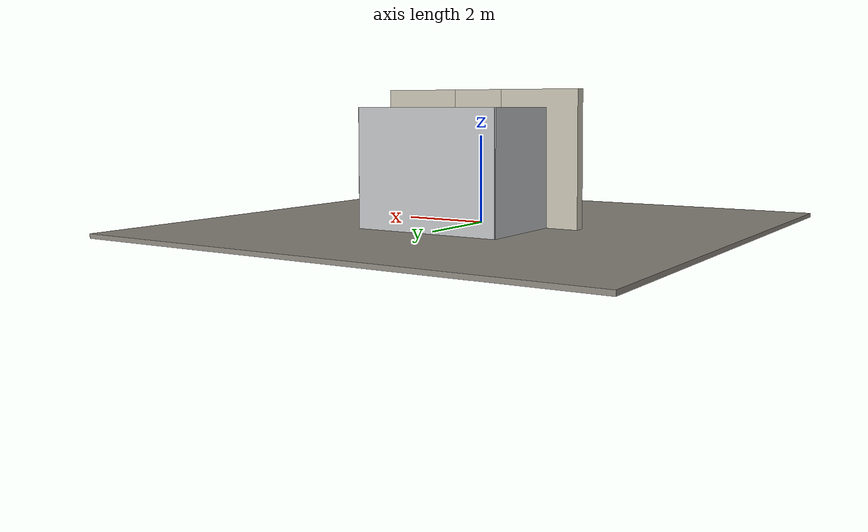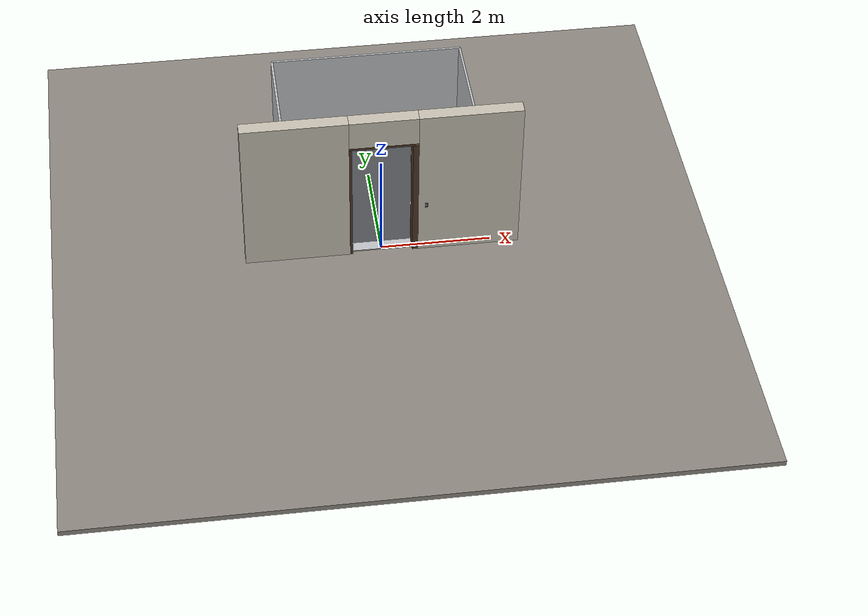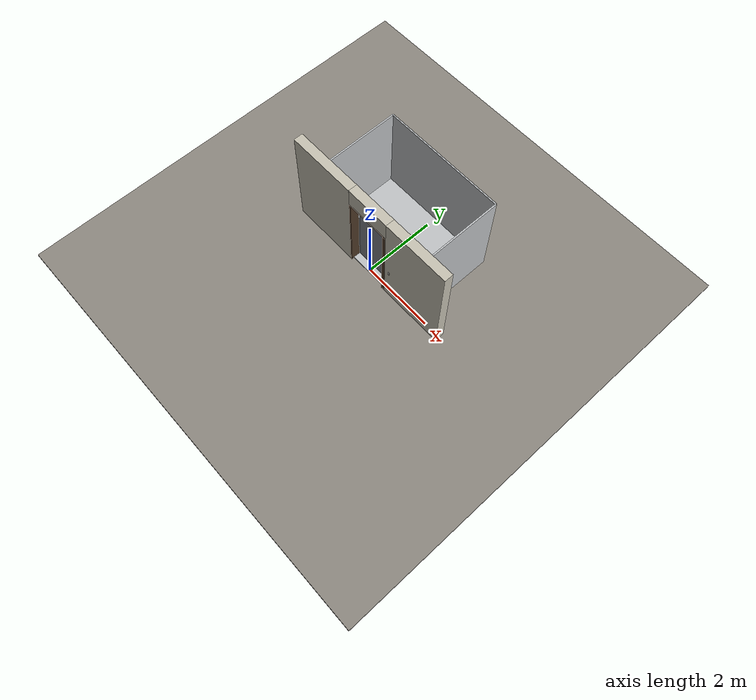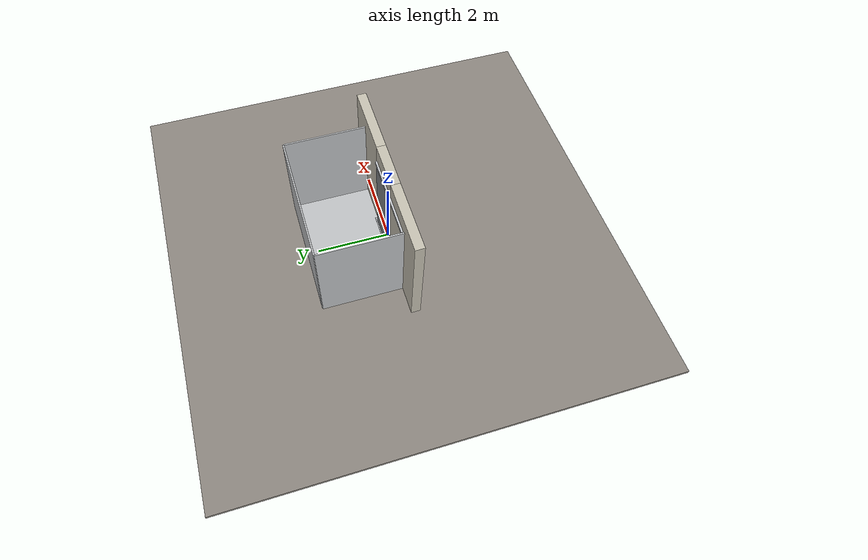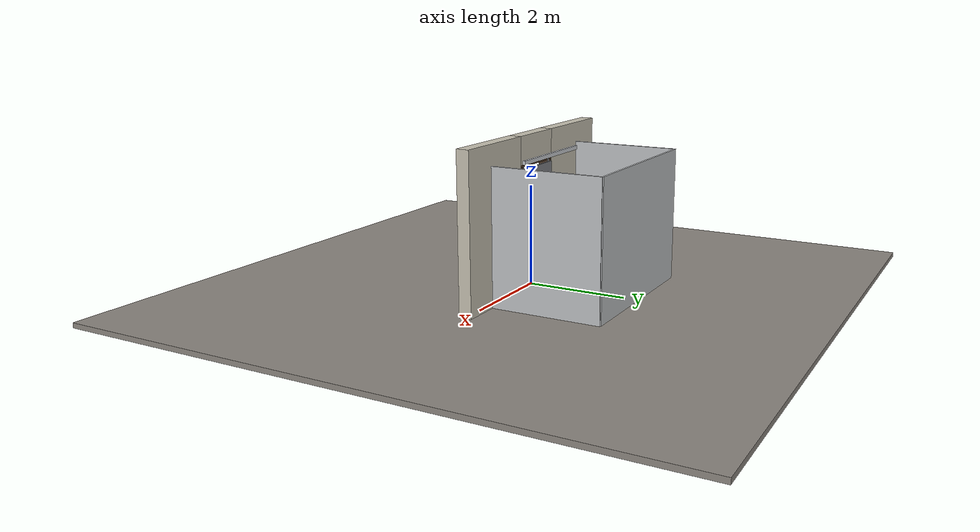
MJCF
<?xml version="1.0" ?>
<mujoco model="db0607_elevator_simple">
  <compiler angle="radian" meshdir="../../hardware" texturedir="../../textures" autolimits="true" inertiafromgeom="false"/>
  <option timestep="0.002" integrator="implicitfast" cone="elliptic" impratio="10" noslip_iterations="3">
    <flag multiccd="enable"/>
  </option>
  <size memory="16M"/>
  <default>
    <geom condim="4" solref="0.005 1" solimp="0.95 0.99 0.001"/>
    <joint solreflimit="0.005 1" solimplimit="0.95 0.99 0.001"/>
    <tendon solreflimit="0.005 1"/>
    <equality solref="0.002 1"/>
  </default>
  <visual>
    <headlight ambient="0.4 0.4 0.4" diffuse="0.7 0.7 0.7" specular="0.2 0.2 0.2"/>
    <quality shadowsize="4096"/>
    <map znear="0.01" zfar="60"/>
  </visual>
  <asset>
    <material name="mat_floor" rgba="0.55 0.53 0.5 1" specular="0.2" shininess="0.15" reflectance="0"/>
    <material name="mat_wall" rgba="0.78 0.76 0.7 1" specular="0.2" shininess="0.1" reflectance="0"/>
    <material name="mat_frame" rgba="0.3 0.22 0.15 1" specular="0.74" shininess="0.5" reflectance="0.36"/>
    <material name="mat_track" rgba="0.8 0.81 0.83 1" specular="0.8" shininess="0.6" reflectance="0.4"/>
    <material name="mat_leaf" rgba="0.5 0.51 0.53 1" specular="0.23" shininess="0.48" reflectance="0.02"/>
    <material name="mat_roller" rgba="0.65 0.66 0.68 1" specular="0.74" shininess="0.5" reflectance="0.36"/>
    <material name="mat_hook" rgba="0.75 0.76 0.77 1" specular="0.8" shininess="0.65" reflectance="0.4"/>
    <material name="mat_sill" rgba="0.75 0.76 0.77 1" specular="0.8" shininess="0.65" reflectance="0.4"/>
    <material name="mat_wallreader" rgba="0.05 0.05 0.05 1" specular="0.38" shininess="0.3" reflectance="0.12"/>
    <material name="mat_callbtn" rgba="0.9 0.9 0.9 1" specular="0.68" shininess="0.7" reflectance="0.32"/>
    <texture name="skybox" type="skybox" builtin="gradient" rgb1="0.6 0.7 0.85" rgb2="0.9 0.92 0.95" width="256" height="256"/>
  </asset>
  <worldbody>
    <light name="sun" pos="1.5 -2.5 4" dir="-0.3 0.5 -0.8" directional="true" diffuse="0.8 0.8 0.8" specular="0.3 0.3 0.3" castshadow="true"/>
    <light name="fill" pos="-1.5 2.5 3" dir="0.3 -0.5 -0.7" directional="true" diffuse="0.35 0.35 0.4" castshadow="false"/>
    <camera name="robot_view" pos="0 -2.93125 2.05075" xyaxes="1 0 0 0 0.26963 0.962964" fovy="52"/>
    <camera name="far_view" pos="0 2.93125 2.05075" xyaxes="-1 0 0 0 -0.26963 0.962964" fovy="52"/>
    <camera name="iso" pos="2.22775 -2.46225 2.51975" xyaxes="0.741536 0.670913 0 -0.242917 0.268487 0.932151" fovy="46"/>
    <camera name="detail_handle" pos="0.48 -0.8 1.28" xyaxes="0.97561 0.219512 0 -0.070934 0.315262 0.94635" fovy="38"/>
    <geom name="floor" type="box" size="6 6 0.05" pos="0 0 -0.05" material="mat_floor" group="0" contype="1" conaffinity="1" friction="0.8 0.005 0.0001" density="2400"/>
    <geom name="wall_left" type="box" size="0.955 0.125 1.53" pos="-1.545 0 1.53" material="mat_wall" group="0" contype="1" conaffinity="1" friction="0.6 0.005 0.0001" density="800"/>
    <geom name="wall_right" type="box" size="0.925 0.125 1.53" pos="1.575 0 1.53" material="mat_wall" group="0" contype="1" conaffinity="1" friction="0.6 0.005 0.0001" density="800"/>
    <geom name="wall_header" type="box" size="0.62 0.125 0.2775" pos="0.03 0 2.7825" material="mat_wall" group="0" contype="1" conaffinity="1" friction="0.6 0.005 0.0001" density="800"/>
    <geom name="jamb_l" type="box" size="0.0225 0.125 1.23" pos="-0.5675 0 1.23" material="mat_frame" group="0" contype="1" conaffinity="1" friction="0.6 0.005 0.0001" density="300"/>
    <geom name="jamb_head" type="box" size="0.59 0.125 0.0225" pos="0 0 2.4825" material="mat_frame" group="0" contype="1" conaffinity="1" friction="0.6 0.005 0.0001" density="300"/>
    <geom name="track_header" type="box" size="1.115 0.025 0.04" pos="-0.53 0.152 2.545" material="mat_track" group="0" contype="1" conaffinity="1" friction="0.6 0.005 0.0001" density="2700"/>
    <geom name="jamb_latch_0" type="box" size="0.0525 0.125 1.23" pos="0.5975 0 1.23" material="mat_frame" group="0" contype="1" conaffinity="1" friction="0.6 0.005 0.0001" density="300"/>
    <geom name="sill" type="box" size="0.645 0.1285 0.01" pos="0 0.0685 0.01" material="mat_sill" group="0" contype="1" conaffinity="1" friction="0.6 0.005 0.0001" density="7900"/>
    <geom name="car_floor" type="box" size="1.725 1.1 0.01" pos="0 1.2 -0.01" material="mat_sill" group="0" contype="1" conaffinity="1" friction="0.6 0.005 0.0001" density="7900"/>
    <geom name="car_wall_l" type="box" size="0.02 1.1 1.33" pos="-1.725 1.2 1.33" material="mat_sill" group="0" contype="1" conaffinity="1" friction="0.6 0.005 0.0001" density="7900"/>
    <geom name="car_wall_r" type="box" size="0.02 1.1 1.33" pos="1.725 1.2 1.33" material="mat_sill" group="0" contype="1" conaffinity="1" friction="0.6 0.005 0.0001" density="7900"/>
    <geom name="car_back" type="box" size="1.725 0.02 1.33" pos="0 2.3 1.33" material="mat_sill" group="0" contype="1" conaffinity="1" friction="0.6 0.005 0.0001" density="7900"/>
    <geom name="call_plate" type="box" size="0.03 0.003 0.05" pos="0.795 -0.128 1.05" material="mat_wallreader" group="1" contype="0" conaffinity="0" density="1000"/>
    <geom name="track_header_bracket" type="box" size="0.892 0.0015 0.032" pos="-0.53 0.126 2.545" material="mat_hook" group="1" contype="0" conaffinity="0" density="7850"/>
    <site name="approach_point" pos="0 -1.5 0" quat="1 0 0 0" size="0.05" rgba="0.2 0.9 0.2 0.5" group="4"/>
    <site name="goal_point" pos="0 1.5 0" quat="1 0 0 0" size="0.05" rgba="0.2 0.9 0.2 0.5" group="4"/>
    <site name="door_plane_center" pos="0 0 1.23" quat="1 0 0 0" size="0.02" rgba="0.2 0.9 0.2 0.5" group="4"/>
    <body name="call_button" pos="0.795 -0.131 1.05">
      <inertial pos="0 -0.003 0" mass="0.004241" quat="0 0 0.707107 -0.707107" diaginertia="0.000000251 0.000000251 0.000000477"/>
      <joint name="call_button_slide" type="slide" axis="0 1 0" limited="true" range="0 0.003" damping="1" stiffness="1500" springref="-0.003" armature="0.1"/>
      <geom name="call_button_geom" type="cylinder" size="0.015 0.003" pos="0 -0.003 0" quat="0.707107 -0.707107 0 0" material="mat_callbtn" group="0" contype="1" conaffinity="1" friction="0.6 0.005 0.0001" density="1000"/>
    </body>
    <body name="leaf" pos="0 0.152 0">
      <inertial pos="0 0 1.24474" mass="77.465359" quat="0.5 0.5 0.5 -0.5" diaginertia="7.469051026 38.106010196 45.563566139"/>
      <joint name="leaf_slide" type="slide" axis="-1 0 0" limited="true" range="0 1.06" damping="5.87348" frictionloss="7.597173" armature="0.5"/>
      <geom name="leaf_slab" type="box" size="0.535 0.015 1.2" pos="0 0 1.23" material="mat_leaf" group="0" contype="1" conaffinity="1" friction="0.35 0.005 0.0001" density="1"/>
      <geom name="leaf_carrier_0" type="box" size="0.02 0.005 0.0655" pos="-0.415 0 2.4355" material="mat_roller" group="1" contype="0" conaffinity="0" density="7850"/>
      <geom name="leaf_carrier_wheel_0" type="cylinder" size="0.014 0.006" pos="-0.415 0 2.491" quat="0.707107 -0.707107 0 0" material="mat_roller" group="1" contype="0" conaffinity="0" density="7850"/>
      <geom name="leaf_carrier_1" type="box" size="0.02 0.005 0.0655" pos="0.415 0 2.4355" material="mat_roller" group="1" contype="0" conaffinity="0" density="7850"/>
      <geom name="leaf_carrier_wheel_1" type="cylinder" size="0.014 0.006" pos="0.415 0 2.491" quat="0.707107 -0.707107 0 0" material="mat_roller" group="1" contype="0" conaffinity="0" density="7850"/>
      <site name="leaf_edge_mid" pos="0.535 0 1.23" quat="1 0 0 0" size="0.02" rgba="0.2 0.9 0.2 0.5" group="4"/>
    </body>
  </worldbody>
  <equality>
    <weld name="leaf_interlock_hold" body1="leaf" body2="world" active="true"/>
  </equality>
  <actuator>
    <position name="leaf_drive" joint="leaf_slide" kp="400" kv="60" forcerange="-135 135" ctrlrange="0 1.06"/>
  </actuator>
  <sensor>
    <jointpos name="leaf_slide_pos" joint="leaf_slide"/>
    <jointvel name="leaf_slide_vel" joint="leaf_slide"/>
    <jointpos name="call_button_slide_pos" joint="call_button_slide"/>
    <jointvel name="call_button_slide_vel" joint="call_button_slide"/>
  </sensor>
</mujoco>
